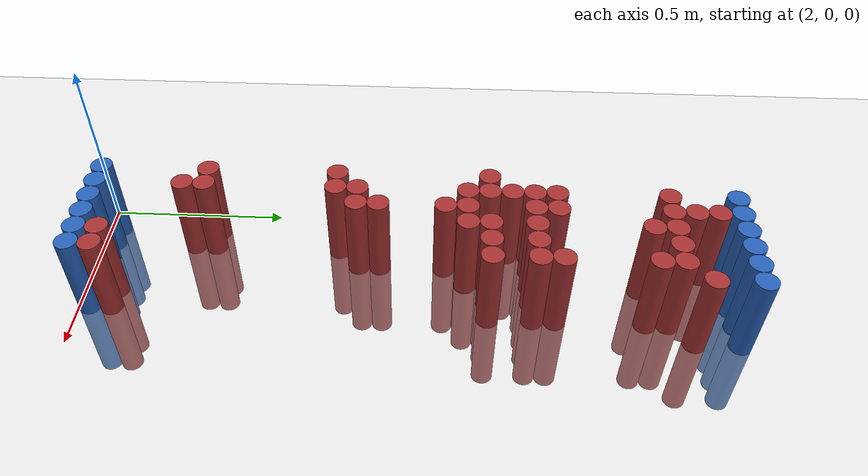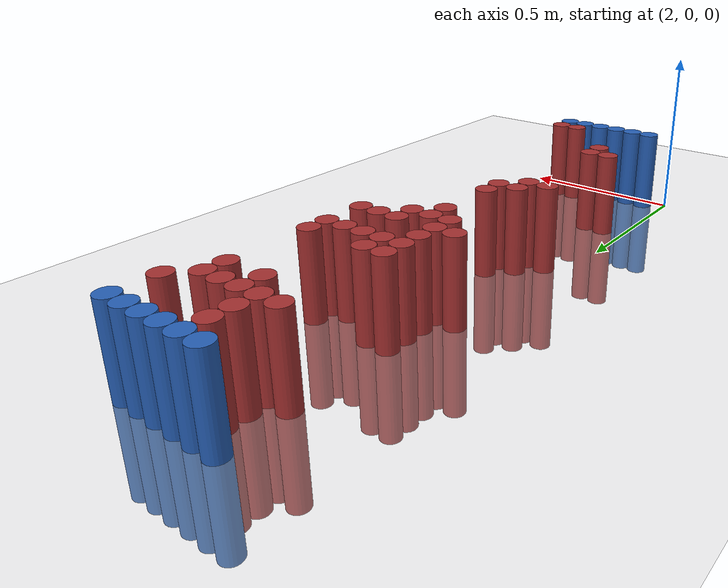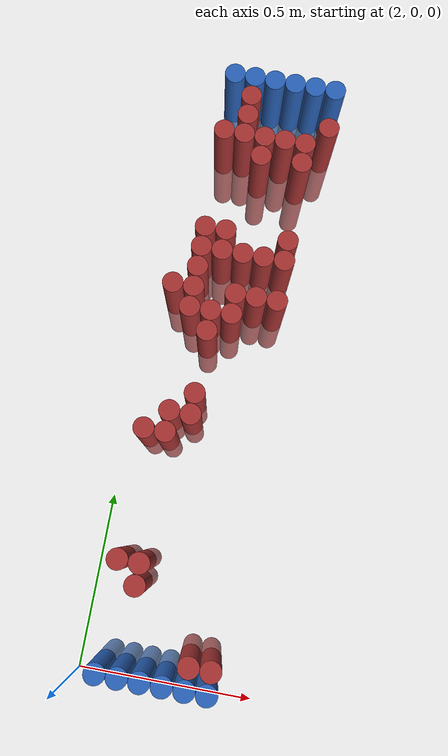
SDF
<sdf version="1.6">
 <world name="default">
  <model name="ground_plane">
   <static>1</static>
   <link name="link">
    <collision name="collision">
     <geometry><plane><normal>0 0 1</normal><size>100 100</size></plane></geometry>
     <surface><friction><ode><mu>100</mu><mu2>50</mu2></ode></friction></surface>
    </collision>
    <visual name="visual">
     <cast_shadows>0</cast_shadows>
     <geometry><plane><normal>0 0 1</normal><size>100 100</size></plane></geometry>
     <material>
      <script><uri>file://media/materials/scripts/gazebo.material</uri><name>Gazebo/Grey</name></script>
     </material>
    </visual>
   </link>
  </model>
  <model name="unit_cylinder_96">
   <static>1</static>
   <pose>2.130000 1.770000 0.000000 0.000000 0.000000 0.000000</pose>
   <link name="link">
    <inertial>
     <mass>1</mass>
     <inertia><ixx>0.145833</ixx><ixy>0</ixy><ixz>0</ixz><iyy>0.145833</iyy><iyz>0</iyz><izz>0.125</izz></inertia>
    </inertial>
    <collision name="collision">
     <geometry><cylinder><radius>0.030000</radius><length>0.5</length></cylinder></geometry>
    </collision>
    <visual name="visual">
     <geometry><cylinder><radius>0.030000</radius><length>0.5</length></cylinder></geometry>
     <material>
      <ambient>0.152000 0.379000 0.720000 1</ambient>
      <diffuse>0.152000 0.379000 0.720000 1</diffuse>
     </material>
     <material>
      <script><name>Gazebo/Grey</name><uri>file://media/materials/scripts/gazebo.material</uri></script>
     </material>
    </visual>
   </link>
  </model>
  <model name="unit_cylinder_97">
   <static>1</static>
   <pose>2.190000 1.770000 0.000000 0.000000 0.000000 0.000000</pose>
   <link name="link">
    <inertial>
     <mass>1</mass>
     <inertia><ixx>0.145833</ixx><ixy>0</ixy><ixz>0</ixz><iyy>0.145833</iyy><iyz>0</iyz><izz>0.125</izz></inertia>
    </inertial>
    <collision name="collision">
     <geometry><cylinder><radius>0.030000</radius><length>0.5</length></cylinder></geometry>
    </collision>
    <visual name="visual">
     <geometry><cylinder><radius>0.030000</radius><length>0.5</length></cylinder></geometry>
     <material>
      <ambient>0.152000 0.379000 0.720000 1</ambient>
      <diffuse>0.152000 0.379000 0.720000 1</diffuse>
     </material>
     <material>
      <script><name>Gazebo/Grey</name><uri>file://media/materials/scripts/gazebo.material</uri></script>
     </material>
    </visual>
   </link>
  </model>
  <model name="unit_cylinder_98">
   <static>1</static>
   <pose>2.250000 1.770000 0.000000 0.000000 0.000000 0.000000</pose>
   <link name="link">
    <inertial>
     <mass>1</mass>
     <inertia><ixx>0.145833</ixx><ixy>0</ixy><ixz>0</ixz><iyy>0.145833</iyy><iyz>0</iyz><izz>0.125</izz></inertia>
    </inertial>
    <collision name="collision">
     <geometry><cylinder><radius>0.030000</radius><length>0.5</length></cylinder></geometry>
    </collision>
    <visual name="visual">
     <geometry><cylinder><radius>0.030000</radius><length>0.5</length></cylinder></geometry>
     <material>
      <ambient>0.152000 0.379000 0.720000 1</ambient>
      <diffuse>0.152000 0.379000 0.720000 1</diffuse>
     </material>
     <material>
      <script><name>Gazebo/Grey</name><uri>file://media/materials/scripts/gazebo.material</uri></script>
     </material>
    </visual>
   </link>
  </model>
  <model name="unit_cylinder_99">
   <static>1</static>
   <pose>2.310000 1.770000 0.000000 0.000000 0.000000 0.000000</pose>
   <link name="link">
    <inertial>
     <mass>1</mass>
     <inertia><ixx>0.145833</ixx><ixy>0</ixy><ixz>0</ixz><iyy>0.145833</iyy><iyz>0</iyz><izz>0.125</izz></inertia>
    </inertial>
    <collision name="collision">
     <geometry><cylinder><radius>0.030000</radius><length>0.5</length></cylinder></geometry>
    </collision>
    <visual name="visual">
     <geometry><cylinder><radius>0.030000</radius><length>0.5</length></cylinder></geometry>
     <material>
      <ambient>0.152000 0.379000 0.720000 1</ambient>
      <diffuse>0.152000 0.379000 0.720000 1</diffuse>
     </material>
     <material>
      <script><name>Gazebo/Grey</name><uri>file://media/materials/scripts/gazebo.material</uri></script>
     </material>
    </visual>
   </link>
  </model>
  <model name="unit_cylinder_100">
   <static>1</static>
   <pose>2.370000 1.770000 0.000000 0.000000 0.000000 0.000000</pose>
   <link name="link">
    <inertial>
     <mass>1</mass>
     <inertia><ixx>0.145833</ixx><ixy>0</ixy><ixz>0</ixz><iyy>0.145833</iyy><iyz>0</iyz><izz>0.125</izz></inertia>
    </inertial>
    <collision name="collision">
     <geometry><cylinder><radius>0.030000</radius><length>0.5</length></cylinder></geometry>
    </collision>
    <visual name="visual">
     <geometry><cylinder><radius>0.030000</radius><length>0.5</length></cylinder></geometry>
     <material>
      <ambient>0.152000 0.379000 0.720000 1</ambient>
      <diffuse>0.152000 0.379000 0.720000 1</diffuse>
     </material>
     <material>
      <script><name>Gazebo/Grey</name><uri>file://media/materials/scripts/gazebo.material</uri></script>
     </material>
    </visual>
   </link>
  </model>
  <model name="unit_cylinder_101">
   <static>1</static>
   <pose>2.430000 1.770000 0.000000 0.000000 0.000000 0.000000</pose>
   <link name="link">
    <inertial>
     <mass>1</mass>
     <inertia><ixx>0.145833</ixx><ixy>0</ixy><ixz>0</ixz><iyy>0.145833</iyy><iyz>0</iyz><izz>0.125</izz></inertia>
    </inertial>
    <collision name="collision">
     <geometry><cylinder><radius>0.030000</radius><length>0.5</length></cylinder></geometry>
    </collision>
    <visual name="visual">
     <geometry><cylinder><radius>0.030000</radius><length>0.5</length></cylinder></geometry>
     <material>
      <ambient>0.152000 0.379000 0.720000 1</ambient>
      <diffuse>0.152000 0.379000 0.720000 1</diffuse>
     </material>
     <material>
      <script><name>Gazebo/Grey</name><uri>file://media/materials/scripts/gazebo.material</uri></script>
     </material>
    </visual>
   </link>
  </model>
  <model name="unit_cylinder_125">
   <static>1</static>
   <pose>2.190000 1.710000 0.000000 0.000000 0.000000 0.000000</pose>
   <link name="link">
    <inertial>
     <mass>1</mass>
     <inertia><ixx>0.145833</ixx><ixy>0</ixy><ixz>0</ixz><iyy>0.145833</iyy><iyz>0</iyz><izz>0.125</izz></inertia>
    </inertial>
    <collision name="collision">
     <geometry><cylinder><radius>0.030000</radius><length>0.5</length></cylinder></geometry>
    </collision>
    <visual name="visual">
     <geometry><cylinder><radius>0.030000</radius><length>0.5</length></cylinder></geometry>
     <material>
      <ambient>0.648000 0.192000 0.192000 1</ambient>
      <diffuse>0.648000 0.192000 0.192000 1</diffuse>
     </material>
     <material>
      <script><name>Gazebo/Grey</name><uri>file://media/materials/scripts/gazebo.material</uri></script>
     </material>
    </visual>
   </link>
  </model>
  <model name="unit_cylinder_140">
   <static>1</static>
   <pose>2.190000 1.650000 0.000000 0.000000 0.000000 0.000000</pose>
   <link name="link">
    <inertial>
     <mass>1</mass>
     <inertia><ixx>0.145833</ixx><ixy>0</ixy><ixz>0</ixz><iyy>0.145833</iyy><iyz>0</iyz><izz>0.125</izz></inertia>
    </inertial>
    <collision name="collision">
     <geometry><cylinder><radius>0.030000</radius><length>0.5</length></cylinder></geometry>
    </collision>
    <visual name="visual">
     <geometry><cylinder><radius>0.030000</radius><length>0.5</length></cylinder></geometry>
     <material>
      <ambient>0.648000 0.192000 0.192000 1</ambient>
      <diffuse>0.648000 0.192000 0.192000 1</diffuse>
     </material>
     <material>
      <script><name>Gazebo/Grey</name><uri>file://media/materials/scripts/gazebo.material</uri></script>
     </material>
    </visual>
   </link>
  </model>
  <model name="unit_cylinder_141">
   <static>1</static>
   <pose>2.430000 1.650000 0.000000 0.000000 0.000000 0.000000</pose>
   <link name="link">
    <inertial>
     <mass>1</mass>
     <inertia><ixx>0.145833</ixx><ixy>0</ixy><ixz>0</ixz><iyy>0.145833</iyy><iyz>0</iyz><izz>0.125</izz></inertia>
    </inertial>
    <collision name="collision">
     <geometry><cylinder><radius>0.030000</radius><length>0.5</length></cylinder></geometry>
    </collision>
    <visual name="visual">
     <geometry><cylinder><radius>0.030000</radius><length>0.5</length></cylinder></geometry>
     <material>
      <ambient>0.648000 0.192000 0.192000 1</ambient>
      <diffuse>0.648000 0.192000 0.192000 1</diffuse>
     </material>
     <material>
      <script><name>Gazebo/Grey</name><uri>file://media/materials/scripts/gazebo.material</uri></script>
     </material>
    </visual>
   </link>
  </model>
  <model name="unit_cylinder_145">
   <static>1</static>
   <pose>2.130000 1.590000 0.000000 0.000000 0.000000 0.000000</pose>
   <link name="link">
    <inertial>
     <mass>1</mass>
     <inertia><ixx>0.145833</ixx><ixy>0</ixy><ixz>0</ixz><iyy>0.145833</iyy><iyz>0</iyz><izz>0.125</izz></inertia>
    </inertial>
    <collision name="collision">
     <geometry><cylinder><radius>0.030000</radius><length>0.5</length></cylinder></geometry>
    </collision>
    <visual name="visual">
     <geometry><cylinder><radius>0.030000</radius><length>0.5</length></cylinder></geometry>
     <material>
      <ambient>0.648000 0.192000 0.192000 1</ambient>
      <diffuse>0.648000 0.192000 0.192000 1</diffuse>
     </material>
     <material>
      <script><name>Gazebo/Grey</name><uri>file://media/materials/scripts/gazebo.material</uri></script>
     </material>
    </visual>
   </link>
  </model>
  <model name="unit_cylinder_146">
   <static>1</static>
   <pose>2.190000 1.590000 0.000000 0.000000 0.000000 0.000000</pose>
   <link name="link">
    <inertial>
     <mass>1</mass>
     <inertia><ixx>0.145833</ixx><ixy>0</ixy><ixz>0</ixz><iyy>0.145833</iyy><iyz>0</iyz><izz>0.125</izz></inertia>
    </inertial>
    <collision name="collision">
     <geometry><cylinder><radius>0.030000</radius><length>0.5</length></cylinder></geometry>
    </collision>
    <visual name="visual">
     <geometry><cylinder><radius>0.030000</radius><length>0.5</length></cylinder></geometry>
     <material>
      <ambient>0.648000 0.192000 0.192000 1</ambient>
      <diffuse>0.648000 0.192000 0.192000 1</diffuse>
     </material>
     <material>
      <script><name>Gazebo/Grey</name><uri>file://media/materials/scripts/gazebo.material</uri></script>
     </material>
    </visual>
   </link>
  </model>
  <model name="unit_cylinder_147">
   <static>1</static>
   <pose>2.250000 1.590000 0.000000 0.000000 0.000000 0.000000</pose>
   <link name="link">
    <inertial>
     <mass>1</mass>
     <inertia><ixx>0.145833</ixx><ixy>0</ixy><ixz>0</ixz><iyy>0.145833</iyy><iyz>0</iyz><izz>0.125</izz></inertia>
    </inertial>
    <collision name="collision">
     <geometry><cylinder><radius>0.030000</radius><length>0.5</length></cylinder></geometry>
    </collision>
    <visual name="visual">
     <geometry><cylinder><radius>0.030000</radius><length>0.5</length></cylinder></geometry>
     <material>
      <ambient>0.648000 0.192000 0.192000 1</ambient>
      <diffuse>0.648000 0.192000 0.192000 1</diffuse>
     </material>
     <material>
      <script><name>Gazebo/Grey</name><uri>file://media/materials/scripts/gazebo.material</uri></script>
     </material>
    </visual>
   </link>
  </model>
  <model name="unit_cylinder_148">
   <static>1</static>
   <pose>2.310000 1.590000 0.000000 0.000000 0.000000 0.000000</pose>
   <link name="link">
    <inertial>
     <mass>1</mass>
     <inertia><ixx>0.145833</ixx><ixy>0</ixy><ixz>0</ixz><iyy>0.145833</iyy><iyz>0</iyz><izz>0.125</izz></inertia>
    </inertial>
    <collision name="collision">
     <geometry><cylinder><radius>0.030000</radius><length>0.5</length></cylinder></geometry>
    </collision>
    <visual name="visual">
     <geometry><cylinder><radius>0.030000</radius><length>0.5</length></cylinder></geometry>
     <material>
      <ambient>0.648000 0.192000 0.192000 1</ambient>
      <diffuse>0.648000 0.192000 0.192000 1</diffuse>
     </material>
     <material>
      <script><name>Gazebo/Grey</name><uri>file://media/materials/scripts/gazebo.material</uri></script>
     </material>
    </visual>
   </link>
  </model>
  <model name="unit_cylinder_149">
   <static>1</static>
   <pose>2.370000 1.590000 0.000000 0.000000 0.000000 0.000000</pose>
   <link name="link">
    <inertial>
     <mass>1</mass>
     <inertia><ixx>0.145833</ixx><ixy>0</ixy><ixz>0</ixz><iyy>0.145833</iyy><iyz>0</iyz><izz>0.125</izz></inertia>
    </inertial>
    <collision name="collision">
     <geometry><cylinder><radius>0.030000</radius><length>0.5</length></cylinder></geometry>
    </collision>
    <visual name="visual">
     <geometry><cylinder><radius>0.030000</radius><length>0.5</length></cylinder></geometry>
     <material>
      <ambient>0.648000 0.192000 0.192000 1</ambient>
      <diffuse>0.648000 0.192000 0.192000 1</diffuse>
     </material>
     <material>
      <script><name>Gazebo/Grey</name><uri>file://media/materials/scripts/gazebo.material</uri></script>
     </material>
    </visual>
   </link>
  </model>
  <model name="unit_cylinder_151">
   <static>1</static>
   <pose>2.250000 1.530000 0.000000 0.000000 0.000000 0.000000</pose>
   <link name="link">
    <inertial>
     <mass>1</mass>
     <inertia><ixx>0.145833</ixx><ixy>0</ixy><ixz>0</ixz><iyy>0.145833</iyy><iyz>0</iyz><izz>0.125</izz></inertia>
    </inertial>
    <collision name="collision">
     <geometry><cylinder><radius>0.030000</radius><length>0.5</length></cylinder></geometry>
    </collision>
    <visual name="visual">
     <geometry><cylinder><radius>0.030000</radius><length>0.5</length></cylinder></geometry>
     <material>
      <ambient>0.648000 0.192000 0.192000 1</ambient>
      <diffuse>0.648000 0.192000 0.192000 1</diffuse>
     </material>
     <material>
      <script><name>Gazebo/Grey</name><uri>file://media/materials/scripts/gazebo.material</uri></script>
     </material>
    </visual>
   </link>
  </model>
  <model name="unit_cylinder_152">
   <static>1</static>
   <pose>2.370000 1.530000 0.000000 0.000000 0.000000 0.000000</pose>
   <link name="link">
    <inertial>
     <mass>1</mass>
     <inertia><ixx>0.145833</ixx><ixy>0</ixy><ixz>0</ixz><iyy>0.145833</iyy><iyz>0</iyz><izz>0.125</izz></inertia>
    </inertial>
    <collision name="collision">
     <geometry><cylinder><radius>0.030000</radius><length>0.5</length></cylinder></geometry>
    </collision>
    <visual name="visual">
     <geometry><cylinder><radius>0.030000</radius><length>0.5</length></cylinder></geometry>
     <material>
      <ambient>0.648000 0.192000 0.192000 1</ambient>
      <diffuse>0.648000 0.192000 0.192000 1</diffuse>
     </material>
     <material>
      <script><name>Gazebo/Grey</name><uri>file://media/materials/scripts/gazebo.material</uri></script>
     </material>
    </visual>
   </link>
  </model>
  <model name="unit_cylinder_166">
   <static>1</static>
   <pose>2.130000 1.290000 0.000000 0.000000 0.000000 0.000000</pose>
   <link name="link">
    <inertial>
     <mass>1</mass>
     <inertia><ixx>0.145833</ixx><ixy>0</ixy><ixz>0</ixz><iyy>0.145833</iyy><iyz>0</iyz><izz>0.125</izz></inertia>
    </inertial>
    <collision name="collision">
     <geometry><cylinder><radius>0.030000</radius><length>0.5</length></cylinder></geometry>
    </collision>
    <visual name="visual">
     <geometry><cylinder><radius>0.030000</radius><length>0.5</length></cylinder></geometry>
     <material>
      <ambient>0.648000 0.192000 0.192000 1</ambient>
      <diffuse>0.648000 0.192000 0.192000 1</diffuse>
     </material>
     <material>
      <script><name>Gazebo/Grey</name><uri>file://media/materials/scripts/gazebo.material</uri></script>
     </material>
    </visual>
   </link>
  </model>
  <model name="unit_cylinder_167">
   <static>1</static>
   <pose>2.190000 1.290000 0.000000 0.000000 0.000000 0.000000</pose>
   <link name="link">
    <inertial>
     <mass>1</mass>
     <inertia><ixx>0.145833</ixx><ixy>0</ixy><ixz>0</ixz><iyy>0.145833</iyy><iyz>0</iyz><izz>0.125</izz></inertia>
    </inertial>
    <collision name="collision">
     <geometry><cylinder><radius>0.030000</radius><length>0.5</length></cylinder></geometry>
    </collision>
    <visual name="visual">
     <geometry><cylinder><radius>0.030000</radius><length>0.5</length></cylinder></geometry>
     <material>
      <ambient>0.648000 0.192000 0.192000 1</ambient>
      <diffuse>0.648000 0.192000 0.192000 1</diffuse>
     </material>
     <material>
      <script><name>Gazebo/Grey</name><uri>file://media/materials/scripts/gazebo.material</uri></script>
     </material>
    </visual>
   </link>
  </model>
  <model name="unit_cylinder_168">
   <static>1</static>
   <pose>2.370000 1.290000 0.000000 0.000000 0.000000 0.000000</pose>
   <link name="link">
    <inertial>
     <mass>1</mass>
     <inertia><ixx>0.145833</ixx><ixy>0</ixy><ixz>0</ixz><iyy>0.145833</iyy><iyz>0</iyz><izz>0.125</izz></inertia>
    </inertial>
    <collision name="collision">
     <geometry><cylinder><radius>0.030000</radius><length>0.5</length></cylinder></geometry>
    </collision>
    <visual name="visual">
     <geometry><cylinder><radius>0.030000</radius><length>0.5</length></cylinder></geometry>
     <material>
      <ambient>0.648000 0.192000 0.192000 1</ambient>
      <diffuse>0.648000 0.192000 0.192000 1</diffuse>
     </material>
     <material>
      <script><name>Gazebo/Grey</name><uri>file://media/materials/scripts/gazebo.material</uri></script>
     </material>
    </visual>
   </link>
  </model>
  <model name="unit_cylinder_171">
   <static>1</static>
   <pose>2.130000 1.230000 0.000000 0.000000 0.000000 0.000000</pose>
   <link name="link">
    <inertial>
     <mass>1</mass>
     <inertia><ixx>0.145833</ixx><ixy>0</ixy><ixz>0</ixz><iyy>0.145833</iyy><iyz>0</iyz><izz>0.125</izz></inertia>
    </inertial>
    <collision name="collision">
     <geometry><cylinder><radius>0.030000</radius><length>0.5</length></cylinder></geometry>
    </collision>
    <visual name="visual">
     <geometry><cylinder><radius>0.030000</radius><length>0.5</length></cylinder></geometry>
     <material>
      <ambient>0.648000 0.192000 0.192000 1</ambient>
      <diffuse>0.648000 0.192000 0.192000 1</diffuse>
     </material>
     <material>
      <script><name>Gazebo/Grey</name><uri>file://media/materials/scripts/gazebo.material</uri></script>
     </material>
    </visual>
   </link>
  </model>
  <model name="unit_cylinder_172">
   <static>1</static>
   <pose>2.190000 1.230000 0.000000 0.000000 0.000000 0.000000</pose>
   <link name="link">
    <inertial>
     <mass>1</mass>
     <inertia><ixx>0.145833</ixx><ixy>0</ixy><ixz>0</ixz><iyy>0.145833</iyy><iyz>0</iyz><izz>0.125</izz></inertia>
    </inertial>
    <collision name="collision">
     <geometry><cylinder><radius>0.030000</radius><length>0.5</length></cylinder></geometry>
    </collision>
    <visual name="visual">
     <geometry><cylinder><radius>0.030000</radius><length>0.5</length></cylinder></geometry>
     <material>
      <ambient>0.648000 0.192000 0.192000 1</ambient>
      <diffuse>0.648000 0.192000 0.192000 1</diffuse>
     </material>
     <material>
      <script><name>Gazebo/Grey</name><uri>file://media/materials/scripts/gazebo.material</uri></script>
     </material>
    </visual>
   </link>
  </model>
  <model name="unit_cylinder_173">
   <static>1</static>
   <pose>2.250000 1.230000 0.000000 0.000000 0.000000 0.000000</pose>
   <link name="link">
    <inertial>
     <mass>1</mass>
     <inertia><ixx>0.145833</ixx><ixy>0</ixy><ixz>0</ixz><iyy>0.145833</iyy><iyz>0</iyz><izz>0.125</izz></inertia>
    </inertial>
    <collision name="collision">
     <geometry><cylinder><radius>0.030000</radius><length>0.5</length></cylinder></geometry>
    </collision>
    <visual name="visual">
     <geometry><cylinder><radius>0.030000</radius><length>0.5</length></cylinder></geometry>
     <material>
      <ambient>0.648000 0.192000 0.192000 1</ambient>
      <diffuse>0.648000 0.192000 0.192000 1</diffuse>
     </material>
     <material>
      <script><name>Gazebo/Grey</name><uri>file://media/materials/scripts/gazebo.material</uri></script>
     </material>
    </visual>
   </link>
  </model>
  <model name="unit_cylinder_174">
   <static>1</static>
   <pose>2.310000 1.230000 0.000000 0.000000 0.000000 0.000000</pose>
   <link name="link">
    <inertial>
     <mass>1</mass>
     <inertia><ixx>0.145833</ixx><ixy>0</ixy><ixz>0</ixz><iyy>0.145833</iyy><iyz>0</iyz><izz>0.125</izz></inertia>
    </inertial>
    <collision name="collision">
     <geometry><cylinder><radius>0.030000</radius><length>0.5</length></cylinder></geometry>
    </collision>
    <visual name="visual">
     <geometry><cylinder><radius>0.030000</radius><length>0.5</length></cylinder></geometry>
     <material>
      <ambient>0.648000 0.192000 0.192000 1</ambient>
      <diffuse>0.648000 0.192000 0.192000 1</diffuse>
     </material>
     <material>
      <script><name>Gazebo/Grey</name><uri>file://media/materials/scripts/gazebo.material</uri></script>
     </material>
    </visual>
   </link>
  </model>
  <model name="unit_cylinder_175">
   <static>1</static>
   <pose>2.370000 1.230000 0.000000 0.000000 0.000000 0.000000</pose>
   <link name="link">
    <inertial>
     <mass>1</mass>
     <inertia><ixx>0.145833</ixx><ixy>0</ixy><ixz>0</ixz><iyy>0.145833</iyy><iyz>0</iyz><izz>0.125</izz></inertia>
    </inertial>
    <collision name="collision">
     <geometry><cylinder><radius>0.030000</radius><length>0.5</length></cylinder></geometry>
    </collision>
    <visual name="visual">
     <geometry><cylinder><radius>0.030000</radius><length>0.5</length></cylinder></geometry>
     <material>
      <ambient>0.648000 0.192000 0.192000 1</ambient>
      <diffuse>0.648000 0.192000 0.192000 1</diffuse>
     </material>
     <material>
      <script><name>Gazebo/Grey</name><uri>file://media/materials/scripts/gazebo.material</uri></script>
     </material>
    </visual>
   </link>
  </model>
  <model name="unit_cylinder_178">
   <static>1</static>
   <pose>2.130000 1.170000 0.000000 0.000000 0.000000 0.000000</pose>
   <link name="link">
    <inertial>
     <mass>1</mass>
     <inertia><ixx>0.145833</ixx><ixy>0</ixy><ixz>0</ixz><iyy>0.145833</iyy><iyz>0</iyz><izz>0.125</izz></inertia>
    </inertial>
    <collision name="collision">
     <geometry><cylinder><radius>0.030000</radius><length>0.5</length></cylinder></geometry>
    </collision>
    <visual name="visual">
     <geometry><cylinder><radius>0.030000</radius><length>0.5</length></cylinder></geometry>
     <material>
      <ambient>0.648000 0.192000 0.192000 1</ambient>
      <diffuse>0.648000 0.192000 0.192000 1</diffuse>
     </material>
     <material>
      <script><name>Gazebo/Grey</name><uri>file://media/materials/scripts/gazebo.material</uri></script>
     </material>
    </visual>
   </link>
  </model>
  <model name="unit_cylinder_183">
   <static>1</static>
   <pose>2.070000 1.110000 0.000000 0.000000 0.000000 0.000000</pose>
   <link name="link">
    <inertial>
     <mass>1</mass>
     <inertia><ixx>0.145833</ixx><ixy>0</ixy><ixz>0</ixz><iyy>0.145833</iyy><iyz>0</iyz><izz>0.125</izz></inertia>
    </inertial>
    <collision name="collision">
     <geometry><cylinder><radius>0.030000</radius><length>0.5</length></cylinder></geometry>
    </collision>
    <visual name="visual">
     <geometry><cylinder><radius>0.030000</radius><length>0.5</length></cylinder></geometry>
     <material>
      <ambient>0.648000 0.192000 0.192000 1</ambient>
      <diffuse>0.648000 0.192000 0.192000 1</diffuse>
     </material>
     <material>
      <script><name>Gazebo/Grey</name><uri>file://media/materials/scripts/gazebo.material</uri></script>
     </material>
    </visual>
   </link>
  </model>
  <model name="unit_cylinder_184">
   <static>1</static>
   <pose>2.130000 1.110000 0.000000 0.000000 0.000000 0.000000</pose>
   <link name="link">
    <inertial>
     <mass>1</mass>
     <inertia><ixx>0.145833</ixx><ixy>0</ixy><ixz>0</ixz><iyy>0.145833</iyy><iyz>0</iyz><izz>0.125</izz></inertia>
    </inertial>
    <collision name="collision">
     <geometry><cylinder><radius>0.030000</radius><length>0.5</length></cylinder></geometry>
    </collision>
    <visual name="visual">
     <geometry><cylinder><radius>0.030000</radius><length>0.5</length></cylinder></geometry>
     <material>
      <ambient>0.648000 0.192000 0.192000 1</ambient>
      <diffuse>0.648000 0.192000 0.192000 1</diffuse>
     </material>
     <material>
      <script><name>Gazebo/Grey</name><uri>file://media/materials/scripts/gazebo.material</uri></script>
     </material>
    </visual>
   </link>
  </model>
  <model name="unit_cylinder_185">
   <static>1</static>
   <pose>2.250000 1.110000 0.000000 0.000000 0.000000 0.000000</pose>
   <link name="link">
    <inertial>
     <mass>1</mass>
     <inertia><ixx>0.145833</ixx><ixy>0</ixy><ixz>0</ixz><iyy>0.145833</iyy><iyz>0</iyz><izz>0.125</izz></inertia>
    </inertial>
    <collision name="collision">
     <geometry><cylinder><radius>0.030000</radius><length>0.5</length></cylinder></geometry>
    </collision>
    <visual name="visual">
     <geometry><cylinder><radius>0.030000</radius><length>0.5</length></cylinder></geometry>
     <material>
      <ambient>0.648000 0.192000 0.192000 1</ambient>
      <diffuse>0.648000 0.192000 0.192000 1</diffuse>
     </material>
     <material>
      <script><name>Gazebo/Grey</name><uri>file://media/materials/scripts/gazebo.material</uri></script>
     </material>
    </visual>
   </link>
  </model>
  <model name="unit_cylinder_186">
   <static>1</static>
   <pose>2.310000 1.110000 0.000000 0.000000 0.000000 0.000000</pose>
   <link name="link">
    <inertial>
     <mass>1</mass>
     <inertia><ixx>0.145833</ixx><ixy>0</ixy><ixz>0</ixz><iyy>0.145833</iyy><iyz>0</iyz><izz>0.125</izz></inertia>
    </inertial>
    <collision name="collision">
     <geometry><cylinder><radius>0.030000</radius><length>0.5</length></cylinder></geometry>
    </collision>
    <visual name="visual">
     <geometry><cylinder><radius>0.030000</radius><length>0.5</length></cylinder></geometry>
     <material>
      <ambient>0.648000 0.192000 0.192000 1</ambient>
      <diffuse>0.648000 0.192000 0.192000 1</diffuse>
     </material>
     <material>
      <script><name>Gazebo/Grey</name><uri>file://media/materials/scripts/gazebo.material</uri></script>
     </material>
    </visual>
   </link>
  </model>
  <model name="unit_cylinder_187">
   <static>1</static>
   <pose>2.370000 1.110000 0.000000 0.000000 0.000000 0.000000</pose>
   <link name="link">
    <inertial>
     <mass>1</mass>
     <inertia><ixx>0.145833</ixx><ixy>0</ixy><ixz>0</ixz><iyy>0.145833</iyy><iyz>0</iyz><izz>0.125</izz></inertia>
    </inertial>
    <collision name="collision">
     <geometry><cylinder><radius>0.030000</radius><length>0.5</length></cylinder></geometry>
    </collision>
    <visual name="visual">
     <geometry><cylinder><radius>0.030000</radius><length>0.5</length></cylinder></geometry>
     <material>
      <ambient>0.648000 0.192000 0.192000 1</ambient>
      <diffuse>0.648000 0.192000 0.192000 1</diffuse>
     </material>
     <material>
      <script><name>Gazebo/Grey</name><uri>file://media/materials/scripts/gazebo.material</uri></script>
     </material>
    </visual>
   </link>
  </model>
  <model name="unit_cylinder_196">
   <static>1</static>
   <pose>2.130000 1.050000 0.000000 0.000000 0.000000 0.000000</pose>
   <link name="link">
    <inertial>
     <mass>1</mass>
     <inertia><ixx>0.145833</ixx><ixy>0</ixy><ixz>0</ixz><iyy>0.145833</iyy><iyz>0</iyz><izz>0.125</izz></inertia>
    </inertial>
    <collision name="collision">
     <geometry><cylinder><radius>0.030000</radius><length>0.5</length></cylinder></geometry>
    </collision>
    <visual name="visual">
     <geometry><cylinder><radius>0.030000</radius><length>0.5</length></cylinder></geometry>
     <material>
      <ambient>0.648000 0.192000 0.192000 1</ambient>
      <diffuse>0.648000 0.192000 0.192000 1</diffuse>
     </material>
     <material>
      <script><name>Gazebo/Grey</name><uri>file://media/materials/scripts/gazebo.material</uri></script>
     </material>
    </visual>
   </link>
  </model>
  <model name="unit_cylinder_197">
   <static>1</static>
   <pose>2.190000 1.050000 0.000000 0.000000 0.000000 0.000000</pose>
   <link name="link">
    <inertial>
     <mass>1</mass>
     <inertia><ixx>0.145833</ixx><ixy>0</ixy><ixz>0</ixz><iyy>0.145833</iyy><iyz>0</iyz><izz>0.125</izz></inertia>
    </inertial>
    <collision name="collision">
     <geometry><cylinder><radius>0.030000</radius><length>0.5</length></cylinder></geometry>
    </collision>
    <visual name="visual">
     <geometry><cylinder><radius>0.030000</radius><length>0.5</length></cylinder></geometry>
     <material>
      <ambient>0.648000 0.192000 0.192000 1</ambient>
      <diffuse>0.648000 0.192000 0.192000 1</diffuse>
     </material>
     <material>
      <script><name>Gazebo/Grey</name><uri>file://media/materials/scripts/gazebo.material</uri></script>
     </material>
    </visual>
   </link>
  </model>
  <model name="unit_cylinder_198">
   <static>1</static>
   <pose>2.250000 1.050000 0.000000 0.000000 0.000000 0.000000</pose>
   <link name="link">
    <inertial>
     <mass>1</mass>
     <inertia><ixx>0.145833</ixx><ixy>0</ixy><ixz>0</ixz><iyy>0.145833</iyy><iyz>0</iyz><izz>0.125</izz></inertia>
    </inertial>
    <collision name="collision">
     <geometry><cylinder><radius>0.030000</radius><length>0.5</length></cylinder></geometry>
    </collision>
    <visual name="visual">
     <geometry><cylinder><radius>0.030000</radius><length>0.5</length></cylinder></geometry>
     <material>
      <ambient>0.648000 0.192000 0.192000 1</ambient>
      <diffuse>0.648000 0.192000 0.192000 1</diffuse>
     </material>
     <material>
      <script><name>Gazebo/Grey</name><uri>file://media/materials/scripts/gazebo.material</uri></script>
     </material>
    </visual>
   </link>
  </model>
  <model name="unit_cylinder_206">
   <static>1</static>
   <pose>2.190000 0.990000 0.000000 0.000000 0.000000 0.000000</pose>
   <link name="link">
    <inertial>
     <mass>1</mass>
     <inertia><ixx>0.145833</ixx><ixy>0</ixy><ixz>0</ixz><iyy>0.145833</iyy><iyz>0</iyz><izz>0.125</izz></inertia>
    </inertial>
    <collision name="collision">
     <geometry><cylinder><radius>0.030000</radius><length>0.5</length></cylinder></geometry>
    </collision>
    <visual name="visual">
     <geometry><cylinder><radius>0.030000</radius><length>0.5</length></cylinder></geometry>
     <material>
      <ambient>0.648000 0.192000 0.192000 1</ambient>
      <diffuse>0.648000 0.192000 0.192000 1</diffuse>
     </material>
     <material>
      <script><name>Gazebo/Grey</name><uri>file://media/materials/scripts/gazebo.material</uri></script>
     </material>
    </visual>
   </link>
  </model>
  <model name="unit_cylinder_218">
   <static>1</static>
   <pose>2.190000 0.810000 0.000000 0.000000 0.000000 0.000000</pose>
   <link name="link">
    <inertial>
     <mass>1</mass>
     <inertia><ixx>0.145833</ixx><ixy>0</ixy><ixz>0</ixz><iyy>0.145833</iyy><iyz>0</iyz><izz>0.125</izz></inertia>
    </inertial>
    <collision name="collision">
     <geometry><cylinder><radius>0.030000</radius><length>0.5</length></cylinder></geometry>
    </collision>
    <visual name="visual">
     <geometry><cylinder><radius>0.030000</radius><length>0.5</length></cylinder></geometry>
     <material>
      <ambient>0.648000 0.192000 0.192000 1</ambient>
      <diffuse>0.648000 0.192000 0.192000 1</diffuse>
     </material>
     <material>
      <script><name>Gazebo/Grey</name><uri>file://media/materials/scripts/gazebo.material</uri></script>
     </material>
    </visual>
   </link>
  </model>
  <model name="unit_cylinder_221">
   <static>1</static>
   <pose>2.130000 0.750000 0.000000 0.000000 0.000000 0.000000</pose>
   <link name="link">
    <inertial>
     <mass>1</mass>
     <inertia><ixx>0.145833</ixx><ixy>0</ixy><ixz>0</ixz><iyy>0.145833</iyy><iyz>0</iyz><izz>0.125</izz></inertia>
    </inertial>
    <collision name="collision">
     <geometry><cylinder><radius>0.030000</radius><length>0.5</length></cylinder></geometry>
    </collision>
    <visual name="visual">
     <geometry><cylinder><radius>0.030000</radius><length>0.5</length></cylinder></geometry>
     <material>
      <ambient>0.648000 0.192000 0.192000 1</ambient>
      <diffuse>0.648000 0.192000 0.192000 1</diffuse>
     </material>
     <material>
      <script><name>Gazebo/Grey</name><uri>file://media/materials/scripts/gazebo.material</uri></script>
     </material>
    </visual>
   </link>
  </model>
  <model name="unit_cylinder_222">
   <static>1</static>
   <pose>2.190000 0.750000 0.000000 0.000000 0.000000 0.000000</pose>
   <link name="link">
    <inertial>
     <mass>1</mass>
     <inertia><ixx>0.145833</ixx><ixy>0</ixy><ixz>0</ixz><iyy>0.145833</iyy><iyz>0</iyz><izz>0.125</izz></inertia>
    </inertial>
    <collision name="collision">
     <geometry><cylinder><radius>0.030000</radius><length>0.5</length></cylinder></geometry>
    </collision>
    <visual name="visual">
     <geometry><cylinder><radius>0.030000</radius><length>0.5</length></cylinder></geometry>
     <material>
      <ambient>0.648000 0.192000 0.192000 1</ambient>
      <diffuse>0.648000 0.192000 0.192000 1</diffuse>
     </material>
     <material>
      <script><name>Gazebo/Grey</name><uri>file://media/materials/scripts/gazebo.material</uri></script>
     </material>
    </visual>
   </link>
  </model>
  <model name="unit_cylinder_225">
   <static>1</static>
   <pose>2.070000 0.690000 0.000000 0.000000 0.000000 0.000000</pose>
   <link name="link">
    <inertial>
     <mass>1</mass>
     <inertia><ixx>0.145833</ixx><ixy>0</ixy><ixz>0</ixz><iyy>0.145833</iyy><iyz>0</iyz><izz>0.125</izz></inertia>
    </inertial>
    <collision name="collision">
     <geometry><cylinder><radius>0.030000</radius><length>0.5</length></cylinder></geometry>
    </collision>
    <visual name="visual">
     <geometry><cylinder><radius>0.030000</radius><length>0.5</length></cylinder></geometry>
     <material>
      <ambient>0.648000 0.192000 0.192000 1</ambient>
      <diffuse>0.648000 0.192000 0.192000 1</diffuse>
     </material>
     <material>
      <script><name>Gazebo/Grey</name><uri>file://media/materials/scripts/gazebo.material</uri></script>
     </material>
    </visual>
   </link>
  </model>
  <model name="unit_cylinder_226">
   <static>1</static>
   <pose>2.130000 0.690000 0.000000 0.000000 0.000000 0.000000</pose>
   <link name="link">
    <inertial>
     <mass>1</mass>
     <inertia><ixx>0.145833</ixx><ixy>0</ixy><ixz>0</ixz><iyy>0.145833</iyy><iyz>0</iyz><izz>0.125</izz></inertia>
    </inertial>
    <collision name="collision">
     <geometry><cylinder><radius>0.030000</radius><length>0.5</length></cylinder></geometry>
    </collision>
    <visual name="visual">
     <geometry><cylinder><radius>0.030000</radius><length>0.5</length></cylinder></geometry>
     <material>
      <ambient>0.648000 0.192000 0.192000 1</ambient>
      <diffuse>0.648000 0.192000 0.192000 1</diffuse>
     </material>
     <material>
      <script><name>Gazebo/Grey</name><uri>file://media/materials/scripts/gazebo.material</uri></script>
     </material>
    </visual>
   </link>
  </model>
  <model name="unit_cylinder_239">
   <static>1</static>
   <pose>2.070000 0.330000 0.000000 0.000000 0.000000 0.000000</pose>
   <link name="link">
    <inertial>
     <mass>1</mass>
     <inertia><ixx>0.145833</ixx><ixy>0</ixy><ixz>0</ixz><iyy>0.145833</iyy><iyz>0</iyz><izz>0.125</izz></inertia>
    </inertial>
    <collision name="collision">
     <geometry><cylinder><radius>0.030000</radius><length>0.5</length></cylinder></geometry>
    </collision>
    <visual name="visual">
     <geometry><cylinder><radius>0.030000</radius><length>0.5</length></cylinder></geometry>
     <material>
      <ambient>0.648000 0.192000 0.192000 1</ambient>
      <diffuse>0.648000 0.192000 0.192000 1</diffuse>
     </material>
     <material>
      <script><name>Gazebo/Grey</name><uri>file://media/materials/scripts/gazebo.material</uri></script>
     </material>
    </visual>
   </link>
  </model>
  <model name="unit_cylinder_240">
   <static>1</static>
   <pose>2.130000 0.330000 0.000000 0.000000 0.000000 0.000000</pose>
   <link name="link">
    <inertial>
     <mass>1</mass>
     <inertia><ixx>0.145833</ixx><ixy>0</ixy><ixz>0</ixz><iyy>0.145833</iyy><iyz>0</iyz><izz>0.125</izz></inertia>
    </inertial>
    <collision name="collision">
     <geometry><cylinder><radius>0.030000</radius><length>0.5</length></cylinder></geometry>
    </collision>
    <visual name="visual">
     <geometry><cylinder><radius>0.030000</radius><length>0.5</length></cylinder></geometry>
     <material>
      <ambient>0.648000 0.192000 0.192000 1</ambient>
      <diffuse>0.648000 0.192000 0.192000 1</diffuse>
     </material>
     <material>
      <script><name>Gazebo/Grey</name><uri>file://media/materials/scripts/gazebo.material</uri></script>
     </material>
    </visual>
   </link>
  </model>
  <model name="unit_cylinder_245">
   <static>1</static>
   <pose>2.130000 0.270000 0.000000 0.000000 0.000000 0.000000</pose>
   <link name="link">
    <inertial>
     <mass>1</mass>
     <inertia><ixx>0.145833</ixx><ixy>0</ixy><ixz>0</ixz><iyy>0.145833</iyy><iyz>0</iyz><izz>0.125</izz></inertia>
    </inertial>
    <collision name="collision">
     <geometry><cylinder><radius>0.030000</radius><length>0.5</length></cylinder></geometry>
    </collision>
    <visual name="visual">
     <geometry><cylinder><radius>0.030000</radius><length>0.5</length></cylinder></geometry>
     <material>
      <ambient>0.648000 0.192000 0.192000 1</ambient>
      <diffuse>0.648000 0.192000 0.192000 1</diffuse>
     </material>
     <material>
      <script><name>Gazebo/Grey</name><uri>file://media/materials/scripts/gazebo.material</uri></script>
     </material>
    </visual>
   </link>
  </model>
  <model name="unit_cylinder_257">
   <static>1</static>
   <pose>2.310000 0.090000 0.000000 0.000000 0.000000 0.000000</pose>
   <link name="link">
    <inertial>
     <mass>1</mass>
     <inertia><ixx>0.145833</ixx><ixy>0</ixy><ixz>0</ixz><iyy>0.145833</iyy><iyz>0</iyz><izz>0.125</izz></inertia>
    </inertial>
    <collision name="collision">
     <geometry><cylinder><radius>0.030000</radius><length>0.5</length></cylinder></geometry>
    </collision>
    <visual name="visual">
     <geometry><cylinder><radius>0.030000</radius><length>0.5</length></cylinder></geometry>
     <material>
      <ambient>0.648000 0.192000 0.192000 1</ambient>
      <diffuse>0.648000 0.192000 0.192000 1</diffuse>
     </material>
     <material>
      <script><name>Gazebo/Grey</name><uri>file://media/materials/scripts/gazebo.material</uri></script>
     </material>
    </visual>
   </link>
  </model>
  <model name="unit_cylinder_258">
   <static>1</static>
   <pose>2.370000 0.090000 0.000000 0.000000 0.000000 0.000000</pose>
   <link name="link">
    <inertial>
     <mass>1</mass>
     <inertia><ixx>0.145833</ixx><ixy>0</ixy><ixz>0</ixz><iyy>0.145833</iyy><iyz>0</iyz><izz>0.125</izz></inertia>
    </inertial>
    <collision name="collision">
     <geometry><cylinder><radius>0.030000</radius><length>0.5</length></cylinder></geometry>
    </collision>
    <visual name="visual">
     <geometry><cylinder><radius>0.030000</radius><length>0.5</length></cylinder></geometry>
     <material>
      <ambient>0.648000 0.192000 0.192000 1</ambient>
      <diffuse>0.648000 0.192000 0.192000 1</diffuse>
     </material>
     <material>
      <script><name>Gazebo/Grey</name><uri>file://media/materials/scripts/gazebo.material</uri></script>
     </material>
    </visual>
   </link>
  </model>
  <model name="unit_cylinder_265">
   <static>1</static>
   <pose>2.070000 0.030000 0.000000 0.000000 0.000000 0.000000</pose>
   <link name="link">
    <inertial>
     <mass>1</mass>
     <inertia><ixx>0.145833</ixx><ixy>0</ixy><ixz>0</ixz><iyy>0.145833</iyy><iyz>0</iyz><izz>0.125</izz></inertia>
    </inertial>
    <collision name="collision">
     <geometry><cylinder><radius>0.030000</radius><length>0.5</length></cylinder></geometry>
    </collision>
    <visual name="visual">
     <geometry><cylinder><radius>0.030000</radius><length>0.5</length></cylinder></geometry>
     <material>
      <ambient>0.152000 0.379000 0.720000 1</ambient>
      <diffuse>0.152000 0.379000 0.720000 1</diffuse>
     </material>
     <material>
      <script><name>Gazebo/Grey</name><uri>file://media/materials/scripts/gazebo.material</uri></script>
     </material>
    </visual>
   </link>
  </model>
  <model name="unit_cylinder_266">
   <static>1</static>
   <pose>2.130000 0.030000 0.000000 0.000000 0.000000 0.000000</pose>
   <link name="link">
    <inertial>
     <mass>1</mass>
     <inertia><ixx>0.145833</ixx><ixy>0</ixy><ixz>0</ixz><iyy>0.145833</iyy><iyz>0</iyz><izz>0.125</izz></inertia>
    </inertial>
    <collision name="collision">
     <geometry><cylinder><radius>0.030000</radius><length>0.5</length></cylinder></geometry>
    </collision>
    <visual name="visual">
     <geometry><cylinder><radius>0.030000</radius><length>0.5</length></cylinder></geometry>
     <material>
      <ambient>0.152000 0.379000 0.720000 1</ambient>
      <diffuse>0.152000 0.379000 0.720000 1</diffuse>
     </material>
     <material>
      <script><name>Gazebo/Grey</name><uri>file://media/materials/scripts/gazebo.material</uri></script>
     </material>
    </visual>
   </link>
  </model>
  <model name="unit_cylinder_267">
   <static>1</static>
   <pose>2.190000 0.030000 0.000000 0.000000 0.000000 0.000000</pose>
   <link name="link">
    <inertial>
     <mass>1</mass>
     <inertia><ixx>0.145833</ixx><ixy>0</ixy><ixz>0</ixz><iyy>0.145833</iyy><iyz>0</iyz><izz>0.125</izz></inertia>
    </inertial>
    <collision name="collision">
     <geometry><cylinder><radius>0.030000</radius><length>0.5</length></cylinder></geometry>
    </collision>
    <visual name="visual">
     <geometry><cylinder><radius>0.030000</radius><length>0.5</length></cylinder></geometry>
     <material>
      <ambient>0.152000 0.379000 0.720000 1</ambient>
      <diffuse>0.152000 0.379000 0.720000 1</diffuse>
     </material>
     <material>
      <script><name>Gazebo/Grey</name><uri>file://media/materials/scripts/gazebo.material</uri></script>
     </material>
    </visual>
   </link>
  </model>
  <model name="unit_cylinder_268">
   <static>1</static>
   <pose>2.250000 0.030000 0.000000 0.000000 0.000000 0.000000</pose>
   <link name="link">
    <inertial>
     <mass>1</mass>
     <inertia><ixx>0.145833</ixx><ixy>0</ixy><ixz>0</ixz><iyy>0.145833</iyy><iyz>0</iyz><izz>0.125</izz></inertia>
    </inertial>
    <collision name="collision">
     <geometry><cylinder><radius>0.030000</radius><length>0.5</length></cylinder></geometry>
    </collision>
    <visual name="visual">
     <geometry><cylinder><radius>0.030000</radius><length>0.5</length></cylinder></geometry>
     <material>
      <ambient>0.152000 0.379000 0.720000 1</ambient>
      <diffuse>0.152000 0.379000 0.720000 1</diffuse>
     </material>
     <material>
      <script><name>Gazebo/Grey</name><uri>file://media/materials/scripts/gazebo.material</uri></script>
     </material>
    </visual>
   </link>
  </model>
  <model name="unit_cylinder_269">
   <static>1</static>
   <pose>2.310000 0.030000 0.000000 0.000000 0.000000 0.000000</pose>
   <link name="link">
    <inertial>
     <mass>1</mass>
     <inertia><ixx>0.145833</ixx><ixy>0</ixy><ixz>0</ixz><iyy>0.145833</iyy><iyz>0</iyz><izz>0.125</izz></inertia>
    </inertial>
    <collision name="collision">
     <geometry><cylinder><radius>0.030000</radius><length>0.5</length></cylinder></geometry>
    </collision>
    <visual name="visual">
     <geometry><cylinder><radius>0.030000</radius><length>0.5</length></cylinder></geometry>
     <material>
      <ambient>0.152000 0.379000 0.720000 1</ambient>
      <diffuse>0.152000 0.379000 0.720000 1</diffuse>
     </material>
     <material>
      <script><name>Gazebo/Grey</name><uri>file://media/materials/scripts/gazebo.material</uri></script>
     </material>
    </visual>
   </link>
  </model>
  <model name="unit_cylinder_270">
   <static>1</static>
   <pose>2.370000 0.030000 0.000000 0.000000 0.000000 0.000000</pose>
   <link name="link">
    <inertial>
     <mass>1</mass>
     <inertia><ixx>0.145833</ixx><ixy>0</ixy><ixz>0</ixz><iyy>0.145833</iyy><iyz>0</iyz><izz>0.125</izz></inertia>
    </inertial>
    <collision name="collision">
     <geometry><cylinder><radius>0.030000</radius><length>0.5</length></cylinder></geometry>
    </collision>
    <visual name="visual">
     <geometry><cylinder><radius>0.030000</radius><length>0.5</length></cylinder></geometry>
     <material>
      <ambient>0.152000 0.379000 0.720000 1</ambient>
      <diffuse>0.152000 0.379000 0.720000 1</diffuse>
     </material>
     <material>
      <script><name>Gazebo/Grey</name><uri>file://media/materials/scripts/gazebo.material</uri></script>
     </material>
    </visual>
   </link>
  </model>
 </world>
</sdf>
